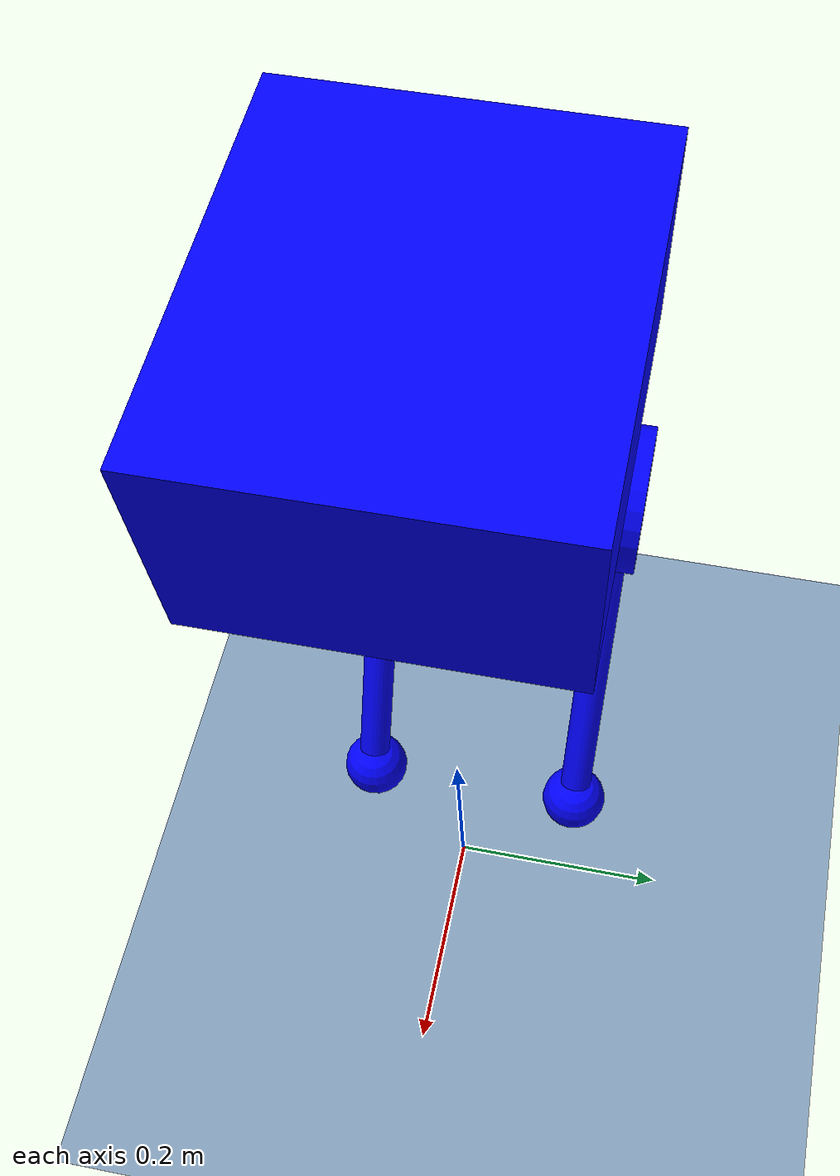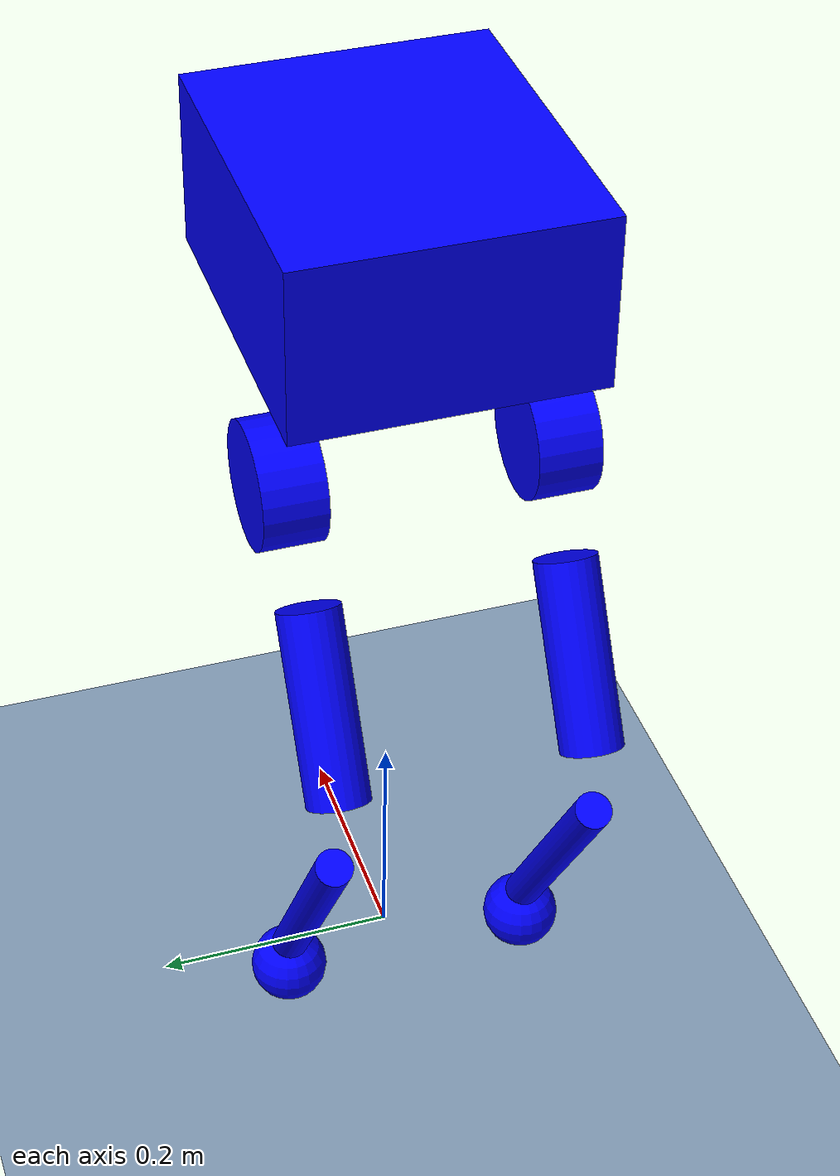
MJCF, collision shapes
<mujoco model="pointfoot">
    <compiler angle="radian" meshdir="../meshes/" />
    <size njmax="500" nconmax="100" />

    <default>
        <light castshadow="false" diffuse="1 1 1" />
        <camera fovy="60"/>
        <default class="visual">
            <geom contype="0" conaffinity="0" group="1" type="mesh" rgba="0.9 0.9 0.9 1.0"/>
        </default>
        <joint armature="0.01" damping="0.01"/>
        <geom contype="1" conaffinity="1" condim="3" friction="0.6 0.005 0.0001" rgba="0.5 0.6 0.7 0.0" margin="0.001" group="0" />
    </default>
    <visual>
        <rgba com="0.502 1.0 0 0.5" contactpoint="1.0 1.0 0.6 0.4" contactforce="0.2 0.98 0.2 0.8"/>
        <scale com="0.2" forcewidth="0.05" contactwidth="0.10" contactheight="0.04"/>
    </visual>

    <asset>
        <mesh name="base_Link" file="base_Link.STL" />
        <mesh name="abad_L_Link" file="abad_L_Link.STL" />
        <mesh name="hip_L_Link" file="hip_L_Link.STL" />
        <mesh name="knee_L_Link" file="knee_L_Link.STL" />
        <mesh name="foot_L_Link" file="foot_L_Link.STL" />
        <mesh name="abad_R_Link" file="abad_R_Link.STL" />
        <mesh name="hip_R_Link" file="hip_R_Link.STL" />
        <mesh name="knee_R_Link" file="knee_R_Link.STL" />
        <mesh name="foot_R_Link" file="foot_R_Link.STL" />
    </asset>

    <asset>
        <texture type='skybox' builtin='gradient' width='512' height='512' rgb1="1.0 1.0 1.0" rgb2="1.0 1.0 1.0"/>
        <texture name="texplane" type="2d" builtin="checker" rgb1="0.35 0.35 0.35" rgb2="0.55 0.55 0.55" width="512" height="512" mark="cross" markrgb=".8 .8 .8"/>
        <material name="matplane" reflectance="0.0" texture="texplane" texrepeat="1 1" texuniform="true"/>
    </asset>
        <option timestep="0.001"/>

    <worldbody>
        <geom name="floor" rgba="0.5 0.6 0.7 1" pos="0 0 0" size="0 0 0.25" type="plane" material="matplane" condim="3"/>
        <camera name="track" mode="trackcom" pos="0 -2.3 1.6" xyaxes="1 0 0 0 0.707 0.707"/>
        <light directional="true" diffuse=".8 .8 .8" pos="0 0 10" dir="0 0 -10"/>

        <body name="base_Link" pos="0 0 0.65">
            <inertial pos="0.0124 0.00086 -0.00641" quat="0.966719 -0.0111305 -0.255591 -0.00210813" mass="8.49" diaginertia="0.128834 0.0933858 0.0709404" />
            <joint type="free" limited="false" damping="0.0000" stiffness="0.0000" armature="0"/>
            <site name="imu" pos="0 0 0"/>
            <geom class="visual" rgba="0.79216 0.81961 0.93333 1" mesh="base_Link" />
            <geom name="base_collision" size="0.14 0.12 0.07" pos="-0.005 0 0.06969" type="box" rgba="0 0 1 0"/>

            <body name="abad_L_Link" pos="0.0162 0.105 -0.09076">
                <inertial pos="-0.0681 0.04566 0.00085" quat="0.592963 0.572307 0.41408 0.38652" mass="1.59" diaginertia="0.00273336 0.00230236 0.00152368" />
                <joint name="abad_L_Joint" pos="0 0 0" axis="1 0 0" limited="true" range="-0.38397 1.39626" />
                <geom class="visual" rgba="0.79216 0.81961 0.93333 1" mesh="abad_L_Link" />
                <geom name="abad_L_collision" size="0.05 0.025" pos="-0.08 0 0" quat="0.707388 0.706825 0 0" type="cylinder" rgba="0 0 1 0" />

                <body name="hip_L_Link" pos="-0.077 0.0205 0">
                    <inertial pos="-0.02952 -0.04811 -0.04287" quat="0.869278 0.182845 0.228134 0.398595" mass="2.39" diaginertia="0.0264832 0.026196 0.00295134" />
                    <joint name="hip_L_Joint" pos="0 0 0" axis="0 1 0" limited="true" range="-1.01229 1.39626" />
                    <geom class="visual" rgba="1 1 1 1" mesh="hip_L_Link" />
                    <geom name="hip_L_collision" size="0.025 0.075" pos="-0.1 -0.025 -0.14" quat="0.965093 0 0.261909 0" type="cylinder" rgba="0 0 1 0" />

                    <body name="knee_L_Link" pos="-0.15 -0.0205 -0.25981">
                        <inertial pos="0.057 0.00145 -0.09082" quat="0.670886 -0.200279 -0.197803 0.686057" mass="0.38" diaginertia="0.00346823 0.00343227 8.55359e-05" />
                        <joint name="knee_L_Joint" pos="0 0 0" axis="0 -1 0" limited="true" range="-0.872665 1.36136" />
                        <geom class="visual" rgba="0.79216 0.81961 0.93333 1" mesh="knee_L_Link" />
                        <geom name="knee_L_collision" size="0.015 0.13" pos="0.078 0 -0.12" quat="0.962425 0 -0.271547 0" type="cylinder" rgba="0 0 1 0"/>

                        <geom class="visual" pos="0.150 0 -0.2598" rgba="0.26667 0.26667 0.26667 1" mesh="foot_L_Link" />
                        <geom name="foot_L_collision" type="sphere" pos="0.150 0 -0.2598" size="0.032" rgba="0 0 1 0" />
                    </body>
                </body>
            </body>

            <body name="abad_R_Link" pos="0.0162 -0.105 -0.09076">
                <inertial pos="-0.0681 -0.04566 0.00085" quat="0.38652 0.41408 0.572307 0.592963" mass="1.59" diaginertia="0.00273336 0.00230236 0.00152368" />
                <joint name="abad_R_Joint" pos="0 0 0" axis="1 0 0" limited="true" range="-1.39626 0.38397" />
                <geom class="visual" rgba="0.79216 0.81961 0.93333 1" mesh="abad_R_Link" />
                <geom name="abad_R_collision" size="0.05 0.025" pos="-0.08 0 0" quat="0.707388 0.706825 0 0" type="cylinder" rgba="0 0 1 0" />

                <body name="hip_R_Link" pos="-0.077 -0.0205 0">
                    <inertial pos="-0.02952 0.04811 -0.04287" quat="0.398595 0.228134 0.182845 0.869278" mass="2.39" diaginertia="0.0264832 0.026196 0.00295134" />
                    <joint name="hip_R_Joint" pos="0 0 0" axis="0 -1 0" limited="true" range="-1.39626 1.01229" />
                    <geom class="visual" rgba="1 1 1 1" mesh="hip_R_Link" />
                    <geom name="hip_R_collision" size="0.025 0.075" pos="-0.1 0.025 -0.14" quat="0.965093 0 0.261909 0" type="cylinder" rgba="0 0 1 0" />

                    <body name="knee_R_Link" pos="-0.15 0.0205 -0.25981">
                        <inertial pos="0.057 -0.00145 -0.09082" quat="0.686057 -0.197803 -0.200279 0.670886" mass="0.38" diaginertia="0.00346823 0.00343227 8.55359e-05" />
                        <joint name="knee_R_Joint" pos="0 0 0" axis="0 1 0" limited="true" range="-1.36136 0.872665" />
                        <geom class="visual" rgba="0.79216 0.81961 0.93333 1" mesh="knee_R_Link" />
                        <geom name="knee_R_collision" size="0.015 0.13" pos="0.078 0 -0.12" quat="0.962425 0 -0.271547 0" type="cylinder" rgba="0 0 1 0"/>

                        <geom class="visual" pos="0.150 0 -0.2598" rgba="0.26667 0.26667 0.26667 1" mesh="foot_R_Link" />
                        <geom name="foot_R_collision" type="sphere" pos="0.150 0 -0.2598" size="0.032" rgba="0 0 1 0" />
                    </body>
                </body>
            </body>
        </body>
    </worldbody>

    <actuator>
        <motor name="abad_L_Joint"  gear="1"  joint="abad_L_Joint" ctrllimited='true' ctrlrange='-80 80'/>
        <motor name="hip_L_Joint"   gear="1"  joint="hip_L_Joint" ctrllimited='true' ctrlrange='-80 80'/>
        <motor name="knee_L_Joint"  gear="1"  joint="knee_L_Joint" ctrllimited='true' ctrlrange='-80 80'/>
        <motor name="abad_R_Joint"  gear="1"  joint="abad_R_Joint" ctrllimited='true' ctrlrange='-80 80' />
        <motor name="hip_R_Joint"   gear="1"  joint="hip_R_Joint" ctrllimited='true' ctrlrange='-80 80' />
        <motor name="knee_R_Joint"  gear="1"  joint="knee_R_Joint" ctrllimited='true' ctrlrange='-80 80'/>
    </actuator>

    <sensor>
        <framequat name="quat" objtype="site" objname="imu"/>
        <gyro name="gyro" site="imu"/>
        <accelerometer name="acc" site="imu"/>
        <jointpos name="abad_L_Joint"    joint="abad_L_Joint" />
        <jointpos name="hip_L_Joint"     joint="hip_L_Joint" />
        <jointpos name="knee_L_Joint"    joint="knee_L_Joint" />
        <jointpos name="abad_R_Joint"    joint="abad_R_Joint" />
        <jointpos name="hip_R_Joint"     joint="hip_R_Joint" />
        <jointpos name="knee_R_Joint"    joint="knee_R_Joint" />
    </sensor>

</mujoco>
